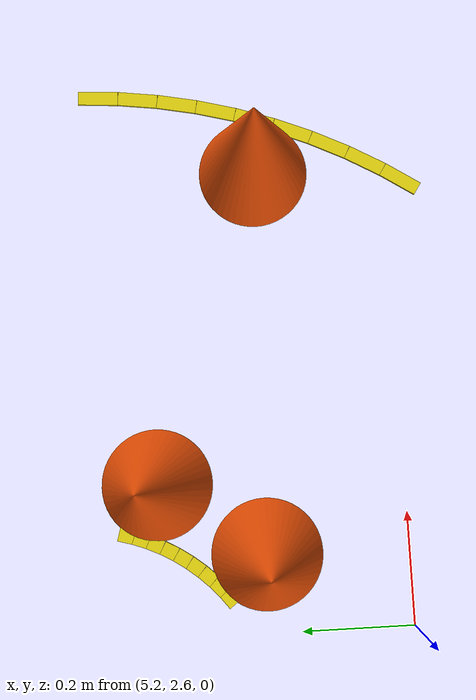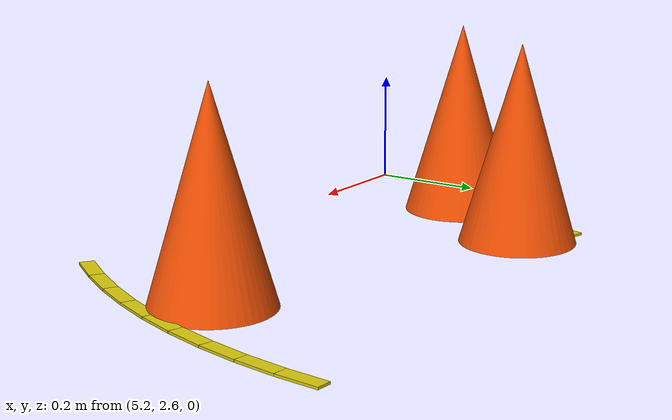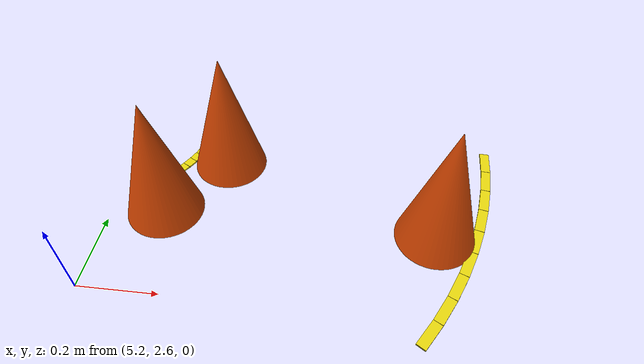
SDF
<sdf version="1.6">
 <world name="limo_competition">
  <include><uri>model://sun</uri></include>
  <model name="right_uturn_outer_26">
   <static>true</static>
   <pose>6.196763328911352 3.1220957123473614 0.003 0 0 -1.638626168179219</pose>
   <link name="link">
    <visual name="visual">
     <geometry><box><size>0.0738861131604379 0.025 0.004</size></box></geometry>
     <material>
      <ambient>0.88 0.82 0.05 1.0</ambient>
      <diffuse>0.88 0.82 0.05 1.0</diffuse>
      <specular>0.05 0.05 0.05 1</specular>
     </material>
    </visual>
   </link>
  </model>
  <model name="right_uturn_outer_27">
   <static>true</static>
   <pose>6.189393789204919 3.048616369141943 0.003 0 0 -1.702886017911743</pose>
   <link name="link">
    <visual name="visual">
     <geometry><box><size>0.07388611316043817 0.025 0.004</size></box></geometry>
     <material>
      <ambient>0.88 0.82 0.05 1.0</ambient>
      <diffuse>0.88 0.82 0.05 1.0</diffuse>
      <specular>0.05 0.05 0.05 1</specular>
     </material>
    </visual>
   </link>
  </model>
  <model name="right_uturn_outer_28">
   <static>true</static>
   <pose>6.177320937288178 2.9757619235673536 0.003 0 0 -1.7671458676442715</pose>
   <link name="link">
    <visual name="visual">
     <geometry><box><size>0.07388611316043785 0.025 0.004</size></box></geometry>
     <material>
      <ambient>0.88 0.82 0.05 1.0</ambient>
      <diffuse>0.88 0.82 0.05 1.0</diffuse>
      <specular>0.05 0.05 0.05 1</specular>
     </material>
    </visual>
   </link>
  </model>
  <model name="right_uturn_outer_29">
   <static>true</static>
   <pose>6.160594608777554 2.9038331120385994 0.003 0 0 -1.831405717376767</pose>
   <link name="link">
    <visual name="visual">
     <geometry><box><size>0.07388611316043753 0.025 0.004</size></box></geometry>
     <material>
      <ambient>0.88 0.82 0.05 1.0</ambient>
      <diffuse>0.88 0.82 0.05 1.0</diffuse>
      <specular>0.05 0.05 0.05 1</specular>
     </material>
    </visual>
   </link>
  </model>
  <model name="right_uturn_outer_30">
   <static>true</static>
   <pose>6.139283848410576 2.8331268500389326 0.003 0 0 -1.8956655671092968</pose>
   <link name="link">
    <visual name="visual">
     <geometry><box><size>0.07388611316043814 0.025 0.004</size></box></geometry>
     <material>
      <ambient>0.88 0.82 0.05 1.0</ambient>
      <diffuse>0.88 0.82 0.05 1.0</diffuse>
      <specular>0.05 0.05 0.05 1</specular>
     </material>
    </visual>
   </link>
  </model>
  <model name="right_uturn_outer_31">
   <static>true</static>
   <pose>6.1134766250355845 2.763935006480189 0.003 0 0 -1.9599254168418128</pose>
   <link name="link">
    <visual name="visual">
     <geometry><box><size>0.07388611316043794 0.025 0.004</size></box></geometry>
     <material>
      <ambient>0.88 0.82 0.05 1.0</ambient>
      <diffuse>0.88 0.82 0.05 1.0</diffuse>
      <specular>0.05 0.05 0.05 1</specular>
     </material>
    </visual>
   </link>
  </model>
  <model name="right_uturn_outer_32">
   <static>true</static>
   <pose>6.083279468484465 2.696543198894908 0.003 0 0 -2.0241852665743365</pose>
   <link name="link">
    <visual name="visual">
     <geometry><box><size>0.07388611316043807 0.025 0.004</size></box></geometry>
     <material>
      <ambient>0.88 0.82 0.05 1.0</ambient>
      <diffuse>0.88 0.82 0.05 1.0</diffuse>
      <specular>0.05 0.05 0.05 1</specular>
     </material>
    </visual>
   </link>
  </model>
  <model name="right_uturn_outer_33">
   <static>true</static>
   <pose>6.048817029827346 2.6312296144335674 0.003 0 0 -2.0884451163068483</pose>
   <link name="link">
    <visual name="visual">
     <geometry><box><size>0.07388611316043762 0.025 0.004</size></box></geometry>
     <material>
      <ambient>0.88 0.82 0.05 1.0</ambient>
      <diffuse>0.88 0.82 0.05 1.0</diffuse>
      <specular>0.05 0.05 0.05 1</specular>
     </material>
    </visual>
   </link>
  </model>
  <model name="right_uturn_outer_34">
   <static>true</static>
   <pose>6.010231566824512 2.568263861533747 0.003 0 0 -2.1527049660393724</pose>
   <link name="link">
    <visual name="visual">
     <geometry><box><size>0.07388611316043797 0.025 0.004</size></box></geometry>
     <material>
      <ambient>0.88 0.82 0.05 1.0</ambient>
      <diffuse>0.88 0.82 0.05 1.0</diffuse>
      <specular>0.05 0.05 0.05 1</specular>
     </material>
    </visual>
   </link>
  </model>
  <model name="right_uturn_inner_24">
   <static>true</static>
   <pose>5.386599626421245 3.1050690873096007 0.003 0 0 -1.845685683984017</pose>
   <link name="link">
    <visual name="visual">
     <geometry><box><size>0.02748187103134849 0.025 0.004</size></box></geometry>
     <material>
      <ambient>0.88 0.82 0.05 1.0</ambient>
      <diffuse>0.88 0.82 0.05 1.0</diffuse>
      <specular>0.05 0.05 0.05 1</specular>
     </material>
    </visual>
   </link>
  </model>
  <model name="right_uturn_inner_25">
   <static>true</static>
   <pose>5.378113808541126 3.0789524253204936 0.003 0 0 -1.9242255003237296</pose>
   <link name="link">
    <visual name="visual">
     <geometry><box><size>0.027481871031347624 0.025 0.004</size></box></geometry>
     <material>
      <ambient>0.88 0.82 0.05 1.0</ambient>
      <diffuse>0.88 0.82 0.05 1.0</diffuse>
      <specular>0.05 0.05 0.05 1</specular>
     </material>
    </visual>
   </link>
  </model>
  <model name="right_uturn_inner_26">
   <static>true</static>
   <pose>5.36760505992244 3.0535820618816887 0.003 0 0 -2.0027653166634978</pose>
   <link name="link">
    <visual name="visual">
     <geometry><box><size>0.027481871031347933 0.025 0.004</size></box></geometry>
     <material>
      <ambient>0.88 0.82 0.05 1.0</ambient>
      <diffuse>0.88 0.82 0.05 1.0</diffuse>
      <specular>0.05 0.05 0.05 1</specular>
     </material>
    </visual>
   </link>
  </model>
  <model name="right_uturn_inner_27">
   <static>true</static>
   <pose>5.35513817049493 3.0291144137202886 0.003 0 0 -2.0813051330032484</pose>
   <link name="link">
    <visual name="visual">
     <geometry><box><size>0.027481871031348356 0.025 0.004</size></box></geometry>
     <material>
      <ambient>0.88 0.82 0.05 1.0</ambient>
      <diffuse>0.88 0.82 0.05 1.0</diffuse>
      <specular>0.05 0.05 0.05 1</specular>
     </material>
    </visual>
   </link>
  </model>
  <model name="right_uturn_inner_28">
   <static>true</static>
   <pose>5.340790002777582 3.005700332023526 0.003 0 0 -2.1598449493429603</pose>
   <link name="link">
    <visual name="visual">
     <geometry><box><size>0.02748187103134787 0.025 0.004</size></box></geometry>
     <material>
      <ambient>0.88 0.82 0.05 1.0</ambient>
      <diffuse>0.88 0.82 0.05 1.0</diffuse>
      <specular>0.05 0.05 0.05 1</specular>
     </material>
    </visual>
   </link>
  </model>
  <model name="right_uturn_inner_29">
   <static>true</static>
   <pose>5.324649017995622 2.9834841723910355 0.003 0 0 -2.238384765682738</pose>
   <link name="link">
    <visual name="visual">
     <geometry><box><size>0.027481871031347797 0.025 0.004</size></box></geometry>
     <material>
      <ambient>0.88 0.82 0.05 1.0</ambient>
      <diffuse>0.88 0.82 0.05 1.0</diffuse>
      <specular>0.05 0.05 0.05 1</specular>
     </material>
    </visual>
   </link>
  </model>
  <model name="right_uturn_inner_30">
   <static>true</static>
   <pose>5.306814730687652 2.962602904834572 0.003 0 0 -2.316924582022467</pose>
   <link name="link">
    <visual name="visual">
     <geometry><box><size>0.027481871031348082 0.025 0.004</size></box></geometry>
     <material>
      <ambient>0.88 0.82 0.05 1.0</ambient>
      <diffuse>0.88 0.82 0.05 1.0</diffuse>
      <specular>0.05 0.05 0.05 1</specular>
     </material>
    </visual>
   </link>
  </model>
  <model name="right_uturn_inner_31">
   <static>true</static>
   <pose>5.287397095165428 2.943185269312349 0.003 0 0 -2.395464398362234</pose>
   <link name="link">
    <visual name="visual">
     <geometry><box><size>0.027481871031348408 0.025 0.004</size></box></geometry>
     <material>
      <ambient>0.88 0.82 0.05 1.0</ambient>
      <diffuse>0.88 0.82 0.05 1.0</diffuse>
      <specular>0.05 0.05 0.05 1</specular>
     </material>
    </visual>
   </link>
  </model>
  <model name="right_uturn_inner_32">
   <static>true</static>
   <pose>5.2665158276089645 2.925350982004379 0.003 0 0 -2.474004214701962</pose>
   <link name="link">
    <visual name="visual">
     <geometry><box><size>0.027481871031348148 0.025 0.004</size></box></geometry>
     <material>
      <ambient>0.88 0.82 0.05 1.0</ambient>
      <diffuse>0.88 0.82 0.05 1.0</diffuse>
      <specular>0.05 0.05 0.05 1</specular>
     </material>
    </visual>
   </link>
  </model>
  <model name="cone_07">
   <static>true</static>
   <pose>5.472861679353659 3.0460909355034493 0.0 0.0 0.0 0.0</pose>
   <link name="link">
    <collision name="collision">
     <geometry>
      <mesh><uri>file:///home/td/Workspace/limo_competition_ws/src/webot_arena/meshes/traffic_cone.stl</uri></mesh>
     </geometry>
    </collision>
    <visual name="visual">
     <geometry>
      <mesh><uri>file:///home/td/Workspace/limo_competition_ws/src/webot_arena/meshes/traffic_cone.stl</uri></mesh>
     </geometry>
     <material>
      <ambient>0.98 0.33 0.02 1.0</ambient>
      <diffuse>0.98 0.33 0.02 1.0</diffuse>
      <specular>0.05 0.05 0.05 1</specular>
     </material>
    </visual>
   </link>
  </model>
  <model name="cone_08">
   <static>true</static>
   <pose>6.036677251825203 2.840878849508048 0.0 0.0 0.0 0.0</pose>
   <link name="link">
    <collision name="collision">
     <geometry>
      <mesh><uri>file:///home/td/Workspace/limo_competition_ws/src/webot_arena/meshes/traffic_cone.stl</uri></mesh>
     </geometry>
    </collision>
    <visual name="visual">
     <geometry>
      <mesh><uri>file:///home/td/Workspace/limo_competition_ws/src/webot_arena/meshes/traffic_cone.stl</uri></mesh>
     </geometry>
     <material>
      <ambient>0.98 0.33 0.02 1.0</ambient>
      <diffuse>0.98 0.33 0.02 1.0</diffuse>
      <specular>0.05 0.05 0.05 1</specular>
     </material>
    </visual>
   </link>
  </model>
  <model name="cone_09">
   <static>true</static>
   <pose>5.339254424358942 2.8552800005964603 0.0 0.0 0.0 0.0</pose>
   <link name="link">
    <collision name="collision">
     <geometry>
      <mesh><uri>file:///home/td/Workspace/limo_competition_ws/src/webot_arena/meshes/traffic_cone.stl</uri></mesh>
     </geometry>
    </collision>
    <visual name="visual">
     <geometry>
      <mesh><uri>file:///home/td/Workspace/limo_competition_ws/src/webot_arena/meshes/traffic_cone.stl</uri></mesh>
     </geometry>
     <material>
      <ambient>0.98 0.33 0.02 1.0</ambient>
      <diffuse>0.98 0.33 0.02 1.0</diffuse>
      <specular>0.05 0.05 0.05 1</specular>
     </material>
    </visual>
   </link>
  </model>
 </world>
</sdf>
